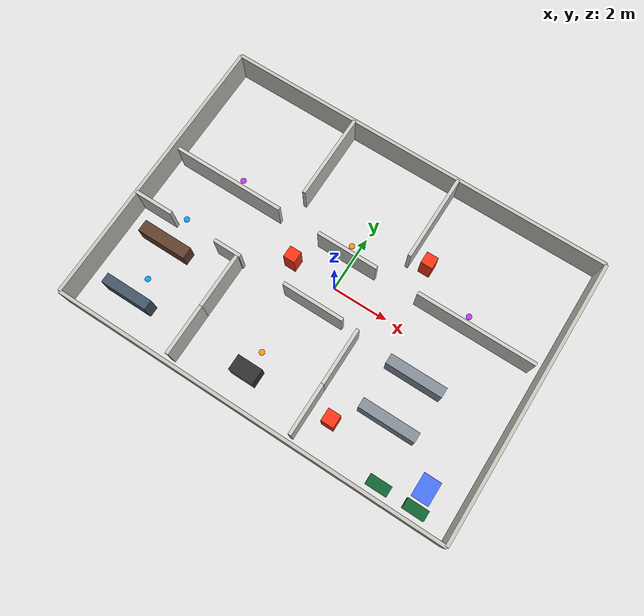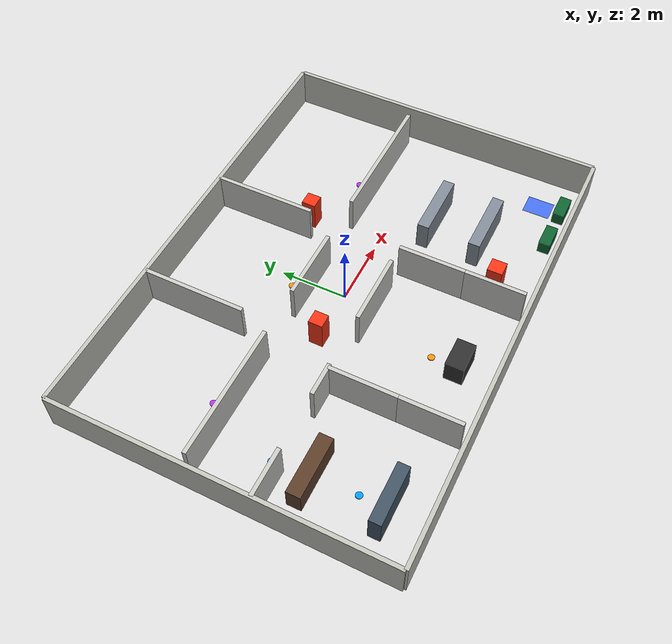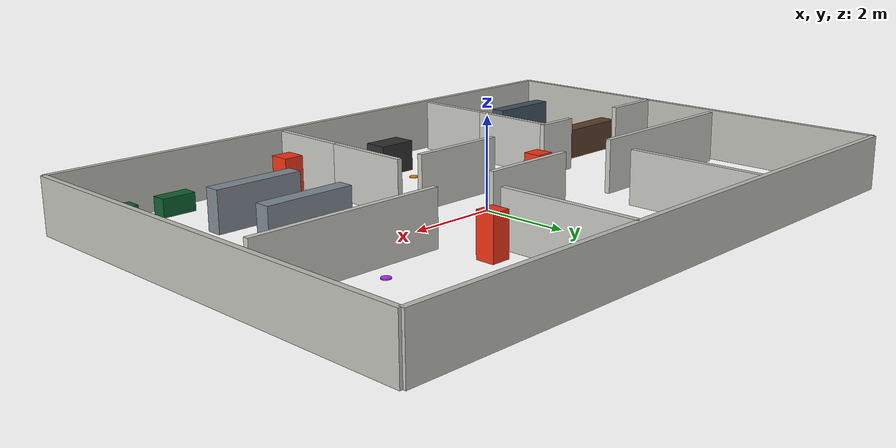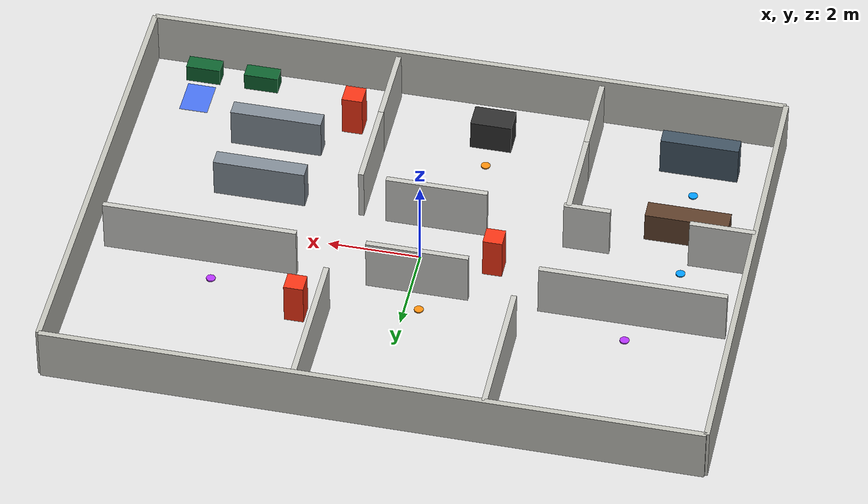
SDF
<?xml version="1.0"?>
<sdf version="1.9">
  <world name="dynamic_navigation_lab">
    <plugin filename="gz-sim-physics-system" name="gz::sim::systems::Physics"/>
    <plugin filename="gz-sim-user-commands-system" name="gz::sim::systems::UserCommands"/>
    <plugin filename="gz-sim-scene-broadcaster-system" name="gz::sim::systems::SceneBroadcaster"/>
    <plugin filename="gz-sim-sensors-system" name="gz::sim::systems::Sensors">
      <render_engine>ogre2</render_engine>
    </plugin>
    <plugin filename="gz-sim-imu-system" name="gz::sim::systems::Imu"/>

    <gui fullscreen="0">
      <camera name="overview_camera">
        <pose>0 -11 12 1.05 0 0</pose>
        <view_controller>orbit</view_controller>
        <projection_type>perspective</projection_type>
      </camera>
    </gui>

    <light name="sun" type="directional">
      <cast_shadows>true</cast_shadows>
      <pose>0 0 8 0 0 0</pose>
      <diffuse>0.8 0.8 0.8 1</diffuse>
      <specular>0.2 0.2 0.2 1</specular>
      <attenuation>
        <range>100</range>
        <constant>0.9</constant>
        <linear>0.01</linear>
        <quadratic>0.001</quadratic>
      </attenuation>
      <direction>-0.4 0.4 -0.8</direction>
    </light>

    <model name="ground_plane">
      <static>true</static>
      <pose>0 0 0 0 0 0</pose>
      <link name="link">
        <collision name="collision">
          <geometry>
            <plane>
              <normal>0 0 1</normal>
              <size>14.5 10.5</size>
            </plane>
          </geometry>
        </collision>
      </link>
    </model>

    <!-- Outer walls: 14m x 10m boundary, wall height 1.2m. -->
    <model name="wall_north">
      <static>true</static>
      <pose>0 5.0 0.6 0 0 0</pose>
      <link name="link">
        <collision name="collision"><geometry><box><size>14.0 0.12 1.2</size></box></geometry></collision>
        <visual name="visual"><geometry><box><size>14.0 0.12 1.2</size></box></geometry><material><ambient>0.75 0.75 0.72 1</ambient><diffuse>0.75 0.75 0.72 1</diffuse></material></visual>
      </link>
    </model>

    <model name="wall_south">
      <static>true</static>
      <pose>0 -5.0 0.6 0 0 0</pose>
      <link name="link">
        <collision name="collision"><geometry><box><size>14.0 0.12 1.2</size></box></geometry></collision>
        <visual name="visual"><geometry><box><size>14.0 0.12 1.2</size></box></geometry><material><ambient>0.75 0.75 0.72 1</ambient><diffuse>0.75 0.75 0.72 1</diffuse></material></visual>
      </link>
    </model>

    <model name="wall_east">
      <static>true</static>
      <pose>7.0 0 0.6 0 0 0</pose>
      <link name="link">
        <collision name="collision"><geometry><box><size>0.12 10.0 1.2</size></box></geometry></collision>
        <visual name="visual"><geometry><box><size>0.12 10.0 1.2</size></box></geometry><material><ambient>0.75 0.75 0.72 1</ambient><diffuse>0.75 0.75 0.72 1</diffuse></material></visual>
      </link>
    </model>

    <model name="wall_west">
      <static>true</static>
      <pose>-7.0 0 0.6 0 0 0</pose>
      <link name="link">
        <collision name="collision"><geometry><box><size>0.12 10.0 1.2</size></box></geometry></collision>
        <visual name="visual"><geometry><box><size>0.12 10.0 1.2</size></box></geometry><material><ambient>0.75 0.75 0.72 1</ambient><diffuse>0.75 0.75 0.72 1</diffuse></material></visual>
      </link>
    </model>

    <!-- Upper room partitions, leaving door openings into the main corridor. -->
    <!-- Upper corridor door gaps widened from 0.8 m / 1.45 m to 1.5 m each. -->
    <model name="upper_corridor_wall_left">
      <static>true</static>
      <pose>-4.75 1.0 0.6 0 0 0</pose>
      <link name="link">
        <collision name="collision"><geometry><box><size>4.0 0.12 1.2</size></box></geometry></collision>
        <visual name="visual"><geometry><box><size>4.0 0.12 1.2</size></box></geometry><material><ambient>0.78 0.78 0.76 1</ambient><diffuse>0.78 0.78 0.76 1</diffuse></material></visual>
      </link>
    </model>

    <model name="upper_corridor_wall_mid">
      <static>true</static>
      <pose>-0.15 1.0 0.6 0 0 0</pose>
      <link name="link">
        <collision name="collision"><geometry><box><size>2.2 0.12 1.2</size></box></geometry></collision>
        <visual name="visual"><geometry><box><size>2.2 0.12 1.2</size></box></geometry><material><ambient>0.78 0.78 0.76 1</ambient><diffuse>0.78 0.78 0.76 1</diffuse></material></visual>
      </link>
    </model>

    <model name="upper_corridor_wall_right">
      <static>true</static>
      <pose>4.55 1.0 0.6 0 0 0</pose>
      <link name="link">
        <collision name="collision"><geometry><box><size>4.2 0.12 1.2</size></box></geometry></collision>
        <visual name="visual"><geometry><box><size>4.2 0.12 1.2</size></box></geometry><material><ambient>0.78 0.78 0.76 1</ambient><diffuse>0.78 0.78 0.76 1</diffuse></material></visual>
      </link>
    </model>

    <model name="upper_partition_a_equipment">
      <static>true</static>
      <pose>-2.4 3.45 0.6 0 0 0</pose>
      <link name="link">
        <collision name="collision"><geometry><box><size>0.12 3.1 1.2</size></box></geometry></collision>
        <visual name="visual"><geometry><box><size>0.12 3.1 1.2</size></box></geometry><material><ambient>0.78 0.78 0.76 1</ambient><diffuse>0.78 0.78 0.76 1</diffuse></material></visual>
      </link>
    </model>

    <model name="upper_partition_equipment_b">
      <static>true</static>
      <pose>1.6 3.45 0.6 0 0 0</pose>
      <link name="link">
        <collision name="collision"><geometry><box><size>0.12 3.1 1.2</size></box></geometry></collision>
        <visual name="visual"><geometry><box><size>0.12 3.1 1.2</size></box></geometry><material><ambient>0.78 0.78 0.76 1</ambient><diffuse>0.78 0.78 0.76 1</diffuse></material></visual>
      </link>
    </model>

    <!-- Lower laboratory partitions; entrance gaps are widened for the
         0.46 m robot footprint and dynamic-navigation test maneuvers. -->
    <model name="lower_corridor_wall_left_west">
      <static>true</static>
      <pose>-6.3 -1.0 0.6 0 0 0</pose>
      <link name="link">
        <collision name="collision"><geometry><box><size>1.4 0.12 1.2</size></box></geometry></collision>
        <visual name="visual"><geometry><box><size>1.4 0.12 1.2</size></box></geometry><material><ambient>0.78 0.78 0.76 1</ambient><diffuse>0.78 0.78 0.76 1</diffuse></material></visual>
      </link>
    </model>

    <model name="lower_corridor_wall_left_east">
      <static>true</static>
      <pose>-3.4 -1.0 0.6 0 0 0</pose>
      <link name="link">
        <collision name="collision"><geometry><box><size>1.0 0.12 1.2</size></box></geometry></collision>
        <visual name="visual"><geometry><box><size>1.0 0.12 1.2</size></box></geometry><material><ambient>0.78 0.78 0.76 1</ambient><diffuse>0.78 0.78 0.76 1</diffuse></material></visual>
      </link>
    </model>

    <model name="lower_corridor_wall_mid">
      <static>true</static>
      <pose>-0.15 -1.0 0.6 0 0 0</pose>
      <link name="link">
        <collision name="collision"><geometry><box><size>2.2 0.12 1.2</size></box></geometry></collision>
        <visual name="visual"><geometry><box><size>2.2 0.12 1.2</size></box></geometry><material><ambient>0.78 0.78 0.76 1</ambient><diffuse>0.78 0.78 0.76 1</diffuse></material></visual>
      </link>
    </model>

    <model name="front_office_partition">
      <static>true</static>
      <pose>-3.0 -2.0 0.6 0 0 0</pose>
      <link name="link">
        <collision name="collision"><geometry><box><size>0.12 2.0 1.2</size></box></geometry></collision>
        <visual name="visual"><geometry><box><size>0.12 2.0 1.2</size></box></geometry><material><ambient>0.78 0.78 0.76 1</ambient><diffuse>0.78 0.78 0.76 1</diffuse></material></visual>
      </link>
    </model>

    <model name="office_narrow_partition">
      <static>true</static>
      <pose>1.5 -2.0 0.6 0 0 0</pose>
      <link name="link">
        <collision name="collision"><geometry><box><size>0.12 2.0 1.2</size></box></geometry></collision>
        <visual name="visual"><geometry><box><size>0.12 2.0 1.2</size></box></geometry><material><ambient>0.78 0.78 0.76 1</ambient><diffuse>0.78 0.78 0.76 1</diffuse></material></visual>
      </link>
    </model>

    <!-- Narrow passage: widened x-gap from 1.05 m to 1.25 m,
         y-gap between the two blocks from 0.75 m to 1.25 m. -->
    <model name="narrow_passage_top_block">
      <static>true</static>
      <pose>3.75 -1.2 0.45 0 0 0</pose>
      <link name="link">
        <collision name="collision"><geometry><box><size>2.0 0.35 0.9</size></box></geometry></collision>
        <visual name="visual"><geometry><box><size>2.0 0.35 0.9</size></box></geometry><material><ambient>0.50 0.54 0.58 1</ambient><diffuse>0.50 0.54 0.58 1</diffuse></material></visual>
      </link>
    </model>

    <model name="narrow_passage_bottom_block">
      <static>true</static>
      <pose>3.75 -2.8 0.45 0 0 0</pose>
      <link name="link">
        <collision name="collision"><geometry><box><size>2.0 0.35 0.9</size></box></geometry></collision>
        <visual name="visual"><geometry><box><size>2.0 0.35 0.9</size></box></geometry><material><ambient>0.50 0.54 0.58 1</ambient><diffuse>0.50 0.54 0.58 1</diffuse></material></visual>
      </link>
    </model>

    <model name="storage_printer_partition">
      <static>true</static>
      <pose>-3.0 -3.9 0.6 0 0 0</pose>
      <link name="link">
        <collision name="collision"><geometry><box><size>0.12 1.8 1.2</size></box></geometry></collision>
        <visual name="visual"><geometry><box><size>0.12 1.8 1.2</size></box></geometry><material><ambient>0.78 0.78 0.76 1</ambient><diffuse>0.78 0.78 0.76 1</diffuse></material></visual>
      </link>
    </model>

    <model name="printer_charging_partition">
      <static>true</static>
      <pose>1.5 -3.9 0.6 0 0 0</pose>
      <link name="link">
        <collision name="collision"><geometry><box><size>0.12 1.8 1.2</size></box></geometry></collision>
        <visual name="visual"><geometry><box><size>0.12 1.8 1.2</size></box></geometry><material><ambient>0.78 0.78 0.76 1</ambient><diffuse>0.78 0.78 0.76 1</diffuse></material></visual>
      </link>
    </model>

    <!-- Furniture and semantic fixtures. -->
    <model name="reception_desk">
      <static>true</static>
      <pose>-5.45 -1.75 0.35 0 0 0</pose>
      <link name="link">
        <collision name="collision"><geometry><box><size>1.8 0.42 0.7</size></box></geometry></collision>
        <visual name="visual"><geometry><box><size>1.8 0.42 0.7</size></box></geometry><material><ambient>0.36 0.24 0.16 1</ambient><diffuse>0.36 0.24 0.16 1</diffuse></material></visual>
      </link>
    </model>

    <model name="storage_shelf">
      <static>true</static>
      <pose>-5.35 -3.85 0.45 0 0 0</pose>
      <link name="link">
        <collision name="collision"><geometry><box><size>1.7 0.35 0.9</size></box></geometry></collision>
        <visual name="visual"><geometry><box><size>1.7 0.35 0.9</size></box></geometry><material><ambient>0.25 0.32 0.38 1</ambient><diffuse>0.25 0.32 0.38 1</diffuse></material></visual>
      </link>
    </model>

    <model name="printer_block">
      <static>true</static>
      <pose>-0.8 -3.85 0.35 0 0 0</pose>
      <link name="link">
        <collision name="collision"><geometry><box><size>0.9 0.55 0.7</size></box></geometry></collision>
        <visual name="visual"><geometry><box><size>0.9 0.55 0.7</size></box></geometry><material><ambient>0.18 0.18 0.18 1</ambient><diffuse>0.18 0.18 0.18 1</diffuse></material></visual>
      </link>
    </model>

    <model name="charging_station_1">
      <static>true</static>
      <pose>4.5 -4.55 0.2 0 0 0</pose>
      <link name="link">
        <collision name="collision"><geometry><box><size>0.75 0.35 0.4</size></box></geometry></collision>
        <visual name="visual"><geometry><box><size>0.75 0.35 0.4</size></box></geometry><material><ambient>0.05 0.38 0.18 1</ambient><diffuse>0.05 0.38 0.18 1</diffuse></material></visual>
      </link>
    </model>

    <model name="charging_station_2">
      <static>true</static>
      <pose>5.8 -4.55 0.2 0 0 0</pose>
      <link name="link">
        <collision name="collision"><geometry><box><size>0.75 0.35 0.4</size></box></geometry></collision>
        <visual name="visual"><geometry><box><size>0.75 0.35 0.4</size></box></geometry><material><ambient>0.05 0.38 0.18 1</ambient><diffuse>0.05 0.38 0.18 1</diffuse></material></visual>
      </link>
    </model>

    <!-- Robot home / spawn pad: visual-only marker in front of charging stations. -->
    <model name="spawn_pad_nav_robot">
      <static>true</static>
      <pose>5.8 -3.85 0.0075 0 0 1.5708</pose>
      <link name="link">
        <visual name="visual"><geometry><box><size>0.82 0.62 0.015</size></box></geometry><material><ambient>0.0 0.25 1.0 0.65</ambient><diffuse>0.0 0.25 1.0 0.65</diffuse></material></visual>
      </link>
    </model>

    <!-- Evaluation goal markers: cylinders are visual landmarks only. -->
    <model name="marker_west_goal">
      <static>true</static>
      <pose>-5.5 -0.65 0.0125 0 0 0</pose>
      <link name="link">
        <visual name="visual"><geometry><cylinder><radius>0.10</radius><length>0.025</length></cylinder></geometry><material><ambient>0.0 0.6 1.0 1</ambient><diffuse>0.0 0.6 1.0 1</diffuse></material></visual>
      </link>
    </model>

    <model name="marker_southwest_goal">
      <static>true</static>
      <pose>-5.35 -3.05 0.0125 0 0 0</pose>
      <link name="link">
        <visual name="visual"><geometry><cylinder><radius>0.10</radius><length>0.025</length></cylinder></geometry><material><ambient>0.0 0.6 1.0 1</ambient><diffuse>0.0 0.6 1.0 1</diffuse></material></visual>
      </link>
    </model>

    <model name="marker_north_goal">
      <static>true</static>
      <pose>-0.3 1.55 0.0125 0 0 0</pose>
      <link name="link">
        <visual name="visual"><geometry><cylinder><radius>0.10</radius><length>0.025</length></cylinder></geometry><material><ambient>1.0 0.55 0.05 1</ambient><diffuse>1.0 0.55 0.05 1</diffuse></material></visual>
      </link>
    </model>

    <model name="marker_northwest_goal">
      <static>true</static>
      <pose>-4.7 1.55 0.0125 0 0 0</pose>
      <link name="link">
        <visual name="visual"><geometry><cylinder><radius>0.10</radius><length>0.025</length></cylinder></geometry><material><ambient>0.7 0.2 1.0 1</ambient><diffuse>0.7 0.2 1.0 1</diffuse></material></visual>
      </link>
    </model>

    <model name="marker_northeast_goal">
      <static>true</static>
      <pose>4.2 1.55 0.0125 0 0 0</pose>
      <link name="link">
        <visual name="visual"><geometry><cylinder><radius>0.10</radius><length>0.025</length></cylinder></geometry><material><ambient>0.7 0.2 1.0 1</ambient><diffuse>0.7 0.2 1.0 1</diffuse></material></visual>
      </link>
    </model>

    <model name="marker_south_goal">
      <static>true</static>
      <pose>-0.8 -3.05 0.0125 0 0 0</pose>
      <link name="link">
        <visual name="visual"><geometry><cylinder><radius>0.10</radius><length>0.025</length></cylinder></geometry><material><ambient>1.0 0.55 0.05 1</ambient><diffuse>1.0 0.55 0.05 1</diffuse></material></visual>
      </link>
    </model>

    <model name="dynamic_obstacle_actor">
      <static>true</static>
      <pose>2.25 -3.70 0.475 0 0 1.5708</pose>
      <link name="base_link">
        <collision name="collision">
          <geometry><box><size>0.45 0.45 0.95</size></box></geometry>
        </collision>
        <visual name="visual">
          <geometry><box><size>0.45 0.45 0.95</size></box></geometry>
          <material>
            <ambient>0.95 0.20 0.08 1</ambient>
            <diffuse>0.95 0.20 0.08 1</diffuse>
            <specular>0.15 0.15 0.15 1</specular>
          </material>
        </visual>
      </link>
    </model>

    <!-- Central corridor actor: horizontal motion inside the open main aisle. -->
    <model name="dynamic_obstacle_center_actor">
      <static>true</static>
      <pose>-1.60 0.00 0.475 0 0 0</pose>
      <link name="base_link">
        <collision name="collision">
          <geometry><box><size>0.42 0.42 0.95</size></box></geometry>
        </collision>
        <visual name="visual">
          <geometry><box><size>0.42 0.42 0.95</size></box></geometry>
          <material><ambient>0.95 0.20 0.08 1</ambient><diffuse>0.95 0.20 0.08 1</diffuse></material>
        </visual>
      </link>
    </model>

    <!-- Upper-right actor: covers goals inside the north-east room. -->
    <model name="dynamic_obstacle_upper_actor">
      <static>true</static>
      <pose>2.20 2.20 0.475 0 0 0</pose>
      <link name="base_link">
        <collision name="collision">
          <geometry><box><size>0.42 0.42 0.95</size></box></geometry>
        </collision>
        <visual name="visual">
          <geometry><box><size>0.42 0.42 0.95</size></box></geometry>
          <material><ambient>0.95 0.20 0.08 1</ambient><diffuse>0.95 0.20 0.08 1</diffuse></material>
        </visual>
      </link>
    </model>
  </world>
</sdf>
